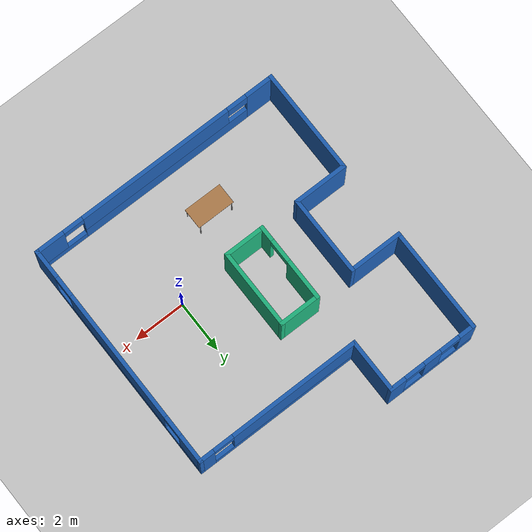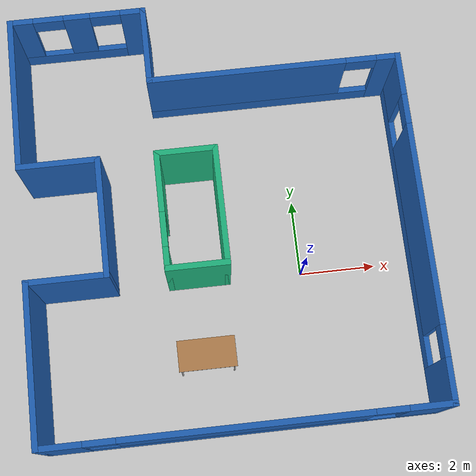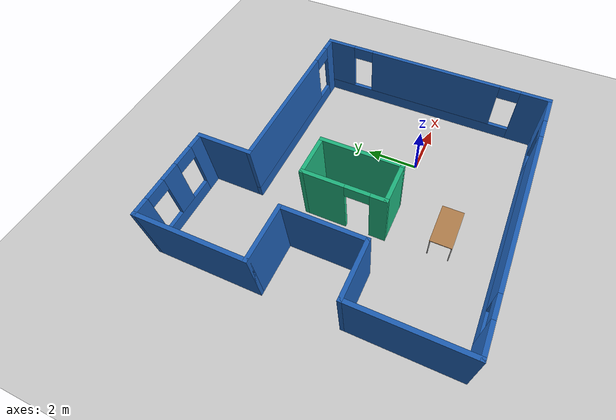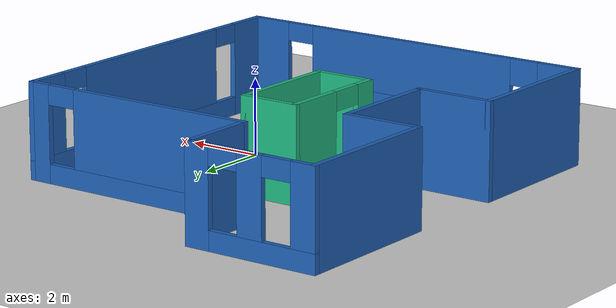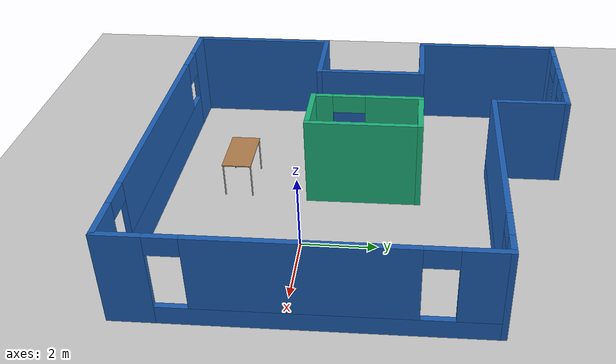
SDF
<sdf version="1.6">
 <world name="default">
  <model name="ground_plane">
   <static>1</static>
   <link name="link">
    <collision name="collision">
     <geometry><plane><normal>0 0 1</normal><size>100 100</size></plane></geometry>
     <surface><friction><ode><mu>100</mu><mu2>50</mu2></ode></friction></surface>
    </collision>
    <visual name="visual">
     <cast_shadows>0</cast_shadows>
     <geometry><plane><normal>0 0 1</normal><size>100 100</size></plane></geometry>
     <material>
      <script><uri>file://media/materials/scripts/gazebo.material</uri><name>Gazebo/Grey</name></script>
     </material>
    </visual>
   </link>
  </model>
  <model name="house">
   <pose>-2 1.5 0 0 -0 0</pose>
   <link name="Wall_10">
    <collision name="Wall_10_Collision">
     <geometry><box><size>2.14909 0.15 2.5</size></box></geometry>
     <pose>0 0 1.25 0 -0 0</pose>
    </collision>
    <visual name="Wall_10_Visual">
     <pose>0 0 1.25 0 -0 0</pose>
     <geometry><box><size>2.14909 0.15 2.5</size></box></geometry>
     <material>
      <script><uri>file://media/materials/scripts/gazebo.material</uri><name>Gazebo/Grey</name></script>
      <ambient>0.117647 0.376471 0.709804 1</ambient>
     </material>
     <meta><layer>0</layer></meta>
    </visual>
    <pose>-1.5 4.5 0 0 -0 1.5708</pose>
   </link>
   <link name="Wall_11">
    <pose>-3.25 5.5 0 0 -0 3.14159</pose>
    <visual name="Wall_11_Visual_0">
     <pose>-1.4875 0 1.25 0 -0 0</pose>
     <geometry><box><size>0.675 0.15 2.5</size></box></geometry>
     <material>
      <script><uri>file://media/materials/scripts/gazebo.material</uri><name>Gazebo/Grey</name></script>
      <ambient>0.117647 0.376471 0.709804 1</ambient>
     </material>
     <meta><layer>0</layer></meta>
    </visual>
    <collision name="Wall_11_Collision_0">
     <geometry><box><size>0.675 0.15 2.5</size></box></geometry>
     <pose>-1.4875 0 1.25 0 -0 0</pose>
    </collision>
    <visual name="Wall_11_Visual_1">
     <pose>0.3375 0 0.25 0 -0 0</pose>
     <geometry><box><size>2.975 0.15 0.5</size></box></geometry>
     <material>
      <script><uri>file://media/materials/scripts/gazebo.material</uri><name>Gazebo/Grey</name></script>
      <ambient>0.117647 0.376471 0.709804 1</ambient>
     </material>
     <meta><layer>0</layer></meta>
    </visual>
    <collision name="Wall_11_Collision_1">
     <geometry><box><size>2.975 0.15 0.5</size></box></geometry>
     <pose>0.3375 0 0.25 0 -0 0</pose>
    </collision>
    <visual name="Wall_11_Visual_2">
     <pose>0 0 1.5 0 -0 0</pose>
     <geometry><box><size>0.7 0.15 2</size></box></geometry>
     <material>
      <script><uri>file://media/materials/scripts/gazebo.material</uri><name>Gazebo/Grey</name></script>
      <ambient>0.117647 0.376471 0.709804 1</ambient>
     </material>
     <meta><layer>0</layer></meta>
    </visual>
    <collision name="Wall_11_Collision_2">
     <geometry><box><size>0.7 0.15 2</size></box></geometry>
     <pose>0 0 1.5 0 -0 0</pose>
    </collision>
    <visual name="Wall_11_Visual_3">
     <pose>1.4875 0 1.5 0 -0 0</pose>
     <geometry><box><size>0.675 0.15 2</size></box></geometry>
     <material>
      <script><uri>file://media/materials/scripts/gazebo.material</uri><name>Gazebo/Grey</name></script>
      <ambient>0.117647 0.376471 0.709804 1</ambient>
     </material>
     <meta><layer>0</layer></meta>
    </visual>
    <collision name="Wall_11_Collision_3">
     <geometry><box><size>0.675 0.15 2</size></box></geometry>
     <pose>1.4875 0 1.5 0 -0 0</pose>
    </collision>
    <visual name="Wall_11_Visual_4">
     <pose>-0.75 0 2.25 0 -0 0</pose>
     <geometry><box><size>0.8 0.15 0.5</size></box></geometry>
     <material>
      <script><uri>file://media/materials/scripts/gazebo.material</uri><name>Gazebo/Grey</name></script>
      <ambient>0.117647 0.376471 0.709804 1</ambient>
     </material>
     <meta><layer>0</layer></meta>
    </visual>
    <collision name="Wall_11_Collision_4">
     <geometry><box><size>0.8 0.15 0.5</size></box></geometry>
     <pose>-0.75 0 2.25 0 -0 0</pose>
    </collision>
    <visual name="Wall_11_Visual_5">
     <pose>0.75 0 2.25 0 -0 0</pose>
     <geometry><box><size>0.8 0.15 0.5</size></box></geometry>
     <material>
      <script><uri>file://media/materials/scripts/gazebo.material</uri><name>Gazebo/Grey</name></script>
      <ambient>0.117647 0.376471 0.709804 1</ambient>
     </material>
     <meta><layer>0</layer></meta>
    </visual>
    <collision name="Wall_11_Collision_5">
     <geometry><box><size>0.8 0.15 0.5</size></box></geometry>
     <pose>0.75 0 2.25 0 -0 0</pose>
    </collision>
   </link>
   <link name="Wall_13">
    <pose>-1.5 0 0 0 0 -1.5708</pose>
    <visual name="Wall_13_Visual_0">
     <pose>-0.7625 0 1.25 0 -0 0</pose>
     <geometry><box><size>1.625 0.15 2.5</size></box></geometry>
     <material>
      <script><uri>file://media/materials/scripts/gazebo.material</uri><name>Gazebo/Grey</name></script>
      <ambient>0.117647 0.709804 0.494118 1</ambient>
     </material>
     <meta><layer>0</layer></meta>
    </visual>
    <collision name="Wall_13_Collision_0">
     <geometry><box><size>1.625 0.15 2.5</size></box></geometry>
     <pose>-0.7625 0 1.25 0 -0 0</pose>
    </collision>
    <visual name="Wall_13_Visual_1">
     <pose>1.2625 0 1.25 0 -0 0</pose>
     <geometry><box><size>0.625 0.15 2.5</size></box></geometry>
     <material>
      <script><uri>file://media/materials/scripts/gazebo.material</uri><name>Gazebo/Grey</name></script>
      <ambient>0.117647 0.709804 0.494118 1</ambient>
     </material>
     <meta><layer>0</layer></meta>
    </visual>
    <collision name="Wall_13_Collision_1">
     <geometry><box><size>0.625 0.15 2.5</size></box></geometry>
     <pose>1.2625 0 1.25 0 -0 0</pose>
    </collision>
    <visual name="Wall_13_Visual_2">
     <pose>0.5 0 2.25 0 -0 0</pose>
     <geometry><box><size>0.9 0.15 0.5</size></box></geometry>
     <material>
      <script><uri>file://media/materials/scripts/gazebo.material</uri><name>Gazebo/Grey</name></script>
      <ambient>0.117647 0.709804 0.494118 1</ambient>
     </material>
     <meta><layer>0</layer></meta>
    </visual>
    <collision name="Wall_13_Collision_2">
     <geometry><box><size>0.9 0.15 0.5</size></box></geometry>
     <pose>0.5 0 2.25 0 -0 0</pose>
    </collision>
   </link>
   <link name="Wall_14">
    <collision name="Wall_14_Collision">
     <geometry><box><size>1.65 0.15 2.5</size></box></geometry>
     <pose>0 0 1.25 0 -0 0</pose>
    </collision>
    <visual name="Wall_14_Visual">
     <pose>0 0 1.25 0 -0 0</pose>
     <geometry><box><size>1.65 0.15 2.5</size></box></geometry>
     <material>
      <script><uri>file://media/materials/scripts/gazebo.material</uri><name>Gazebo/Grey</name></script>
      <ambient>0.117647 0.709804 0.494118 1</ambient>
     </material>
     <meta><layer>0</layer></meta>
    </visual>
    <pose>-0.75 -1.5 0 0 -0 0</pose>
   </link>
   <link name="Wall_15">
    <collision name="Wall_15_Collision">
     <geometry><box><size>3.15 0.15 2.5</size></box></geometry>
     <pose>0 0 1.25 0 -0 0</pose>
    </collision>
    <visual name="Wall_15_Visual">
     <pose>0 0 1.25 0 -0 0</pose>
     <geometry><box><size>3.15 0.15 2.5</size></box></geometry>
     <material>
      <script><uri>file://media/materials/scripts/gazebo.material</uri><name>Gazebo/Grey</name></script>
      <ambient>0.117647 0.709804 0.494118 1</ambient>
     </material>
     <meta><layer>0</layer></meta>
    </visual>
    <pose>0 0 0 0 -0 1.5708</pose>
   </link>
   <link name="Wall_16">
    <collision name="Wall_16_Collision">
     <geometry><box><size>1.65 0.15 2.5</size></box></geometry>
     <pose>0 0 1.25 0 -0 0</pose>
    </collision>
    <visual name="Wall_16_Visual">
     <pose>0 0 1.25 0 -0 0</pose>
     <geometry><box><size>1.65 0.15 2.5</size></box></geometry>
     <material>
      <script><uri>file://media/materials/scripts/gazebo.material</uri><name>Gazebo/Grey</name></script>
      <ambient>0.117647 0.709804 0.494118 1</ambient>
     </material>
     <meta><layer>0</layer></meta>
    </visual>
    <pose>-0.75 1.5 0 0 -0 3.14159</pose>
   </link>
   <link name="Wall_2">
    <collision name="Wall_2_Collision">
     <geometry><box><size>4.15 0.15 2.5</size></box></geometry>
     <pose>0 0 1.25 0 -0 0</pose>
    </collision>
    <visual name="Wall_2_Visual">
     <pose>0 0 1.25 0 -0 0</pose>
     <geometry><box><size>4.15 0.15 2.5</size></box></geometry>
     <material>
      <script><uri>file://media/materials/scripts/gazebo.material</uri><name>Gazebo/Grey</name></script>
      <ambient>0.117647 0.376471 0.709804 1</ambient>
     </material>
     <meta><layer>0</layer></meta>
    </visual>
    <pose>-5 3.5 0 0 0 -1.5708</pose>
   </link>
   <link name="Wall_3">
    <collision name="Wall_3_Collision">
     <geometry><box><size>2.15 0.15 2.5</size></box></geometry>
     <pose>0 0 1.25 0 -0 0</pose>
    </collision>
    <visual name="Wall_3_Visual">
     <pose>0 0 1.25 0 -0 0</pose>
     <geometry><box><size>2.15 0.15 2.5</size></box></geometry>
     <material>
      <script><uri>file://media/materials/scripts/gazebo.material</uri><name>Gazebo/Grey</name></script>
      <ambient>0.117647 0.376471 0.709804 1</ambient>
     </material>
     <meta><layer>0</layer></meta>
    </visual>
    <pose>-4 1.5 0 0 -0 0</pose>
   </link>
   <link name="Wall_4">
    <collision name="Wall_4_Collision">
     <geometry><box><size>3.15 0.15 2.5</size></box></geometry>
     <pose>0 0 1.25 0 -0 0</pose>
    </collision>
    <visual name="Wall_4_Visual">
     <pose>0 0 1.25 0 -0 0</pose>
     <geometry><box><size>3.15 0.15 2.5</size></box></geometry>
     <material>
      <script><uri>file://media/materials/scripts/gazebo.material</uri><name>Gazebo/Grey</name></script>
      <ambient>0.117647 0.376471 0.709804 1</ambient>
     </material>
     <meta><layer>0</layer></meta>
    </visual>
    <pose>-3 0 0 0 0 -1.5708</pose>
   </link>
   <link name="Wall_5">
    <collision name="Wall_5_Collision">
     <geometry><box><size>2.15 0.15 2.5</size></box></geometry>
     <pose>0 0 1.25 0 -0 0</pose>
    </collision>
    <visual name="Wall_5_Visual">
     <pose>0 0 1.25 0 -0 0</pose>
     <geometry><box><size>2.15 0.15 2.5</size></box></geometry>
     <material>
      <script><uri>file://media/materials/scripts/gazebo.material</uri><name>Gazebo/Grey</name></script>
      <ambient>0.117647 0.376471 0.709804 1</ambient>
     </material>
     <meta><layer>0</layer></meta>
    </visual>
    <pose>-4 -1.5 0 0 -0 3.14159</pose>
   </link>
   <link name="Wall_6">
    <collision name="Wall_6_Collision">
     <geometry><box><size>4.15 0.15 2.5</size></box></geometry>
     <pose>0 0 1.25 0 -0 0</pose>
    </collision>
    <visual name="Wall_6_Visual">
     <pose>0 0 1.25 0 -0 0</pose>
     <geometry><box><size>4.15 0.15 2.5</size></box></geometry>
     <material>
      <script><uri>file://media/materials/scripts/gazebo.material</uri><name>Gazebo/Grey</name></script>
      <ambient>0.117647 0.376471 0.709804 1</ambient>
     </material>
     <meta><layer>0</layer></meta>
    </visual>
    <pose>-5 -3.5 0 0 0 -1.5708</pose>
   </link>
   <link name="Wall_7">
    <pose>0 -5.5 0 0 -0 0</pose>
    <visual name="Wall_7_Visual_0">
     <pose>-4.4875 0 1.25 0 -0 0</pose>
     <geometry><box><size>1.175 0.15 2.5</size></box></geometry>
     <material>
      <script><uri>file://media/materials/scripts/gazebo.material</uri><name>Gazebo/Grey</name></script>
      <ambient>0.117647 0.376471 0.709804 1</ambient>
     </material>
     <meta><layer>0</layer></meta>
    </visual>
    <collision name="Wall_7_Collision_0">
     <geometry><box><size>1.175 0.15 2.5</size></box></geometry>
     <pose>-4.4875 0 1.25 0 -0 0</pose>
    </collision>
    <visual name="Wall_7_Visual_1">
     <pose>-0.4 0 0.5 0 -0 0</pose>
     <geometry><box><size>7 0.15 1</size></box></geometry>
     <material>
      <script><uri>file://media/materials/scripts/gazebo.material</uri><name>Gazebo/Grey</name></script>
      <ambient>0.117647 0.376471 0.709804 1</ambient>
     </material>
     <meta><layer>0</layer></meta>
    </visual>
    <collision name="Wall_7_Collision_1">
     <geometry><box><size>7 0.15 1</size></box></geometry>
     <pose>-0.4 0 0.5 0 -0 0</pose>
    </collision>
    <visual name="Wall_7_Visual_2">
     <pose>4.0875 0 0.25 0 -0 0</pose>
     <geometry><box><size>1.975 0.15 0.5</size></box></geometry>
     <material>
      <script><uri>file://media/materials/scripts/gazebo.material</uri><name>Gazebo/Grey</name></script>
      <ambient>0.117647 0.376471 0.709804 1</ambient>
     </material>
     <meta><layer>0</layer></meta>
    </visual>
    <collision name="Wall_7_Collision_2">
     <geometry><box><size>1.975 0.15 0.5</size></box></geometry>
     <pose>4.0875 0 0.25 0 -0 0</pose>
    </collision>
    <visual name="Wall_7_Visual_3">
     <pose>4.4875 0 1.5 0 -0 0</pose>
     <geometry><box><size>1.175 0.15 2</size></box></geometry>
     <material>
      <script><uri>file://media/materials/scripts/gazebo.material</uri><name>Gazebo/Grey</name></script>
      <ambient>0.117647 0.376471 0.709804 1</ambient>
     </material>
     <meta><layer>0</layer></meta>
    </visual>
    <collision name="Wall_7_Collision_3">
     <geometry><box><size>1.175 0.15 2</size></box></geometry>
     <pose>4.4875 0 1.5 0 -0 0</pose>
    </collision>
    <visual name="Wall_7_Visual_4">
     <pose>-0 0 1.75 0 -0 0</pose>
     <geometry><box><size>6.2 0.15 1.5</size></box></geometry>
     <material>
      <script><uri>file://media/materials/scripts/gazebo.material</uri><name>Gazebo/Grey</name></script>
      <ambient>0.117647 0.376471 0.709804 1</ambient>
     </material>
     <meta><layer>0</layer></meta>
    </visual>
    <collision name="Wall_7_Collision_4">
     <geometry><box><size>6.2 0.15 1.5</size></box></geometry>
     <pose>-0 0 1.75 0 -0 0</pose>
    </collision>
    <visual name="Wall_7_Visual_5">
     <pose>-3.5 0 2.15 0 -0 0</pose>
     <geometry><box><size>0.8 0.15 0.7</size></box></geometry>
     <material>
      <script><uri>file://media/materials/scripts/gazebo.material</uri><name>Gazebo/Grey</name></script>
      <ambient>0.117647 0.376471 0.709804 1</ambient>
     </material>
     <meta><layer>0</layer></meta>
    </visual>
    <collision name="Wall_7_Collision_5">
     <geometry><box><size>0.8 0.15 0.7</size></box></geometry>
     <pose>-3.5 0 2.15 0 -0 0</pose>
    </collision>
    <visual name="Wall_7_Visual_6">
     <pose>3.5 0 2.25 0 -0 0</pose>
     <geometry><box><size>0.8 0.15 0.5</size></box></geometry>
     <material>
      <script><uri>file://media/materials/scripts/gazebo.material</uri><name>Gazebo/Grey</name></script>
      <ambient>0.117647 0.376471 0.709804 1</ambient>
     </material>
     <meta><layer>0</layer></meta>
    </visual>
    <collision name="Wall_7_Collision_6">
     <geometry><box><size>0.8 0.15 0.5</size></box></geometry>
     <pose>3.5 0 2.25 0 -0 0</pose>
    </collision>
   </link>
   <link name="Wall_8">
    <pose>5 -1 0 0 -0 1.5708</pose>
    <visual name="Wall_8_Visual_0">
     <pose>-3.9875 0 1.25 0 -0 0</pose>
     <geometry><box><size>1.175 0.15 2.5</size></box></geometry>
     <material>
      <script><uri>file://media/materials/scripts/gazebo.material</uri><name>Gazebo/Grey</name></script>
      <ambient>0.117647 0.376471 0.709804 1</ambient>
     </material>
     <meta><layer>0</layer></meta>
    </visual>
    <collision name="Wall_8_Collision_0">
     <geometry><box><size>1.175 0.15 2.5</size></box></geometry>
     <pose>-3.9875 0 1.25 0 -0 0</pose>
    </collision>
    <visual name="Wall_8_Visual_1">
     <pose>0.5875 0 0.25 0 -0 0</pose>
     <geometry><box><size>7.975 0.15 0.5</size></box></geometry>
     <material>
      <script><uri>file://media/materials/scripts/gazebo.material</uri><name>Gazebo/Grey</name></script>
      <ambient>0.117647 0.376471 0.709804 1</ambient>
     </material>
     <meta><layer>0</layer></meta>
    </visual>
    <collision name="Wall_8_Collision_1">
     <geometry><box><size>7.975 0.15 0.5</size></box></geometry>
     <pose>0.5875 0 0.25 0 -0 0</pose>
    </collision>
    <visual name="Wall_8_Visual_2">
     <pose>0.004987 0 1.5 0 -0 0</pose>
     <geometry><box><size>5.20997 0.15 2</size></box></geometry>
     <material>
      <script><uri>file://media/materials/scripts/gazebo.material</uri><name>Gazebo/Grey</name></script>
      <ambient>0.117647 0.376471 0.709804 1</ambient>
     </material>
     <meta><layer>0</layer></meta>
    </visual>
    <collision name="Wall_8_Collision_2">
     <geometry><box><size>5.20997 0.15 2</size></box></geometry>
     <pose>0.004987 0 1.5 0 -0 0</pose>
    </collision>
    <visual name="Wall_8_Visual_3">
     <pose>3.99249 0 1.5 0 -0 0</pose>
     <geometry><box><size>1.16503 0.15 2</size></box></geometry>
     <material>
      <script><uri>file://media/materials/scripts/gazebo.material</uri><name>Gazebo/Grey</name></script>
      <ambient>0.117647 0.376471 0.709804 1</ambient>
     </material>
     <meta><layer>0</layer></meta>
    </visual>
    <collision name="Wall_8_Collision_3">
     <geometry><box><size>1.16503 0.15 2</size></box></geometry>
     <pose>3.99249 0 1.5 0 -0 0</pose>
    </collision>
    <visual name="Wall_8_Visual_4">
     <pose>-3 0 2.25 0 -0 0</pose>
     <geometry><box><size>0.8 0.15 0.5</size></box></geometry>
     <material>
      <script><uri>file://media/materials/scripts/gazebo.material</uri><name>Gazebo/Grey</name></script>
      <ambient>0.117647 0.376471 0.709804 1</ambient>
     </material>
     <meta><layer>0</layer></meta>
    </visual>
    <collision name="Wall_8_Collision_4">
     <geometry><box><size>0.8 0.15 0.5</size></box></geometry>
     <pose>-3 0 2.25 0 -0 0</pose>
    </collision>
    <visual name="Wall_8_Visual_5">
     <pose>3.00997 0 2.25 0 -0 0</pose>
     <geometry><box><size>0.8 0.15 0.5</size></box></geometry>
     <material>
      <script><uri>file://media/materials/scripts/gazebo.material</uri><name>Gazebo/Grey</name></script>
      <ambient>0.117647 0.376471 0.709804 1</ambient>
     </material>
     <meta><layer>0</layer></meta>
    </visual>
    <collision name="Wall_8_Collision_5">
     <geometry><box><size>0.8 0.15 0.5</size></box></geometry>
     <pose>3.00997 0 2.25 0 -0 0</pose>
    </collision>
   </link>
   <link name="Wall_9">
    <pose>1.75 3.5 0 0 -0 3.14159</pose>
    <visual name="Wall_9_Visual_0">
     <pose>-3.00663 0 1.25 0 -0 0</pose>
     <geometry><box><size>0.636747 0.15 2.5</size></box></geometry>
     <material>
      <script><uri>file://media/materials/scripts/gazebo.material</uri><name>Gazebo/Grey</name></script>
      <ambient>0.117647 0.376471 0.709804 1</ambient>
     </material>
     <meta><layer>0</layer></meta>
    </visual>
    <collision name="Wall_9_Collision_0">
     <geometry><box><size>0.636747 0.15 2.5</size></box></geometry>
     <pose>-3.00663 0 1.25 0 -0 0</pose>
    </collision>
    <visual name="Wall_9_Visual_1">
     <pose>0.318374 0 0.25 0 -0 0</pose>
     <geometry><box><size>6.01325 0.15 0.5</size></box></geometry>
     <material>
      <script><uri>file://media/materials/scripts/gazebo.material</uri><name>Gazebo/Grey</name></script>
      <ambient>0.117647 0.376471 0.709804 1</ambient>
     </material>
     <meta><layer>0</layer></meta>
    </visual>
    <collision name="Wall_9_Collision_1">
     <geometry><box><size>6.01325 0.15 0.5</size></box></geometry>
     <pose>0.318374 0 0.25 0 -0 0</pose>
    </collision>
    <visual name="Wall_9_Visual_2">
     <pose>0.718374 0 1.5 0 -0 0</pose>
     <geometry><box><size>5.21325 0.15 2</size></box></geometry>
     <material>
      <script><uri>file://media/materials/scripts/gazebo.material</uri><name>Gazebo/Grey</name></script>
      <ambient>0.117647 0.376471 0.709804 1</ambient>
     </material>
     <meta><layer>0</layer></meta>
    </visual>
    <collision name="Wall_9_Collision_2">
     <geometry><box><size>5.21325 0.15 2</size></box></geometry>
     <pose>0.718374 0 1.5 0 -0 0</pose>
    </collision>
    <visual name="Wall_9_Visual_3">
     <pose>-2.28825 0 2.25 0 -0 0</pose>
     <geometry><box><size>0.8 0.15 0.5</size></box></geometry>
     <material>
      <script><uri>file://media/materials/scripts/gazebo.material</uri><name>Gazebo/Grey</name></script>
      <ambient>0.117647 0.376471 0.709804 1</ambient>
     </material>
     <meta><layer>0</layer></meta>
    </visual>
    <collision name="Wall_9_Collision_3">
     <geometry><box><size>0.8 0.15 0.5</size></box></geometry>
     <pose>-2.28825 0 2.25 0 -0 0</pose>
    </collision>
   </link>
   <static>1</static>
  </model>
  <model name="table">
   <static>1</static>
   <link name="link">
    <collision name="surface">
     <pose>0 0 1 0 -0 0</pose>
     <geometry><box><size>1.5 0.8 0.03</size></box></geometry>
     <surface><friction><ode><mu>0.6</mu><mu2>0.6</mu2></ode></friction></surface>
    </collision>
    <visual name="visual1">
     <pose>0 0 1 0 -0 0</pose>
     <geometry><box><size>1.5 0.8 0.03</size></box></geometry>
     <material>
      <script><uri>file://media/materials/scripts/gazebo.material</uri><name>Gazebo/Wood</name></script>
     </material>
    </visual>
    <collision name="front_left_leg">
     <pose>0.68 0.38 0.5 0 -0 0</pose>
     <geometry><cylinder><radius>0.02</radius><length>1</length></cylinder></geometry>
    </collision>
    <visual name="front_left_leg">
     <pose>0.68 0.38 0.5 0 -0 0</pose>
     <geometry><cylinder><radius>0.02</radius><length>1</length></cylinder></geometry>
     <material>
      <script><uri>file://media/materials/scripts/gazebo.material</uri><name>Gazebo/Grey</name></script>
     </material>
    </visual>
    <collision name="front_right_leg">
     <pose>0.68 -0.38 0.5 0 -0 0</pose>
     <geometry><cylinder><radius>0.02</radius><length>1</length></cylinder></geometry>
    </collision>
    <visual name="front_right_leg">
     <pose>0.68 -0.38 0.5 0 -0 0</pose>
     <geometry><cylinder><radius>0.02</radius><length>1</length></cylinder></geometry>
     <material>
      <script><uri>file://media/materials/scripts/gazebo.material</uri><name>Gazebo/Grey</name></script>
     </material>
    </visual>
    <collision name="back_right_leg">
     <pose>-0.68 -0.38 0.5 0 -0 0</pose>
     <geometry><cylinder><radius>0.02</radius><length>1</length></cylinder></geometry>
    </collision>
    <visual name="back_right_leg">
     <pose>-0.68 -0.38 0.5 0 -0 0</pose>
     <geometry><cylinder><radius>0.02</radius><length>1</length></cylinder></geometry>
     <material>
      <script><uri>file://media/materials/scripts/gazebo.material</uri><name>Gazebo/Grey</name></script>
     </material>
    </visual>
    <collision name="back_left_leg">
     <pose>-0.68 0.38 0.5 0 -0 0</pose>
     <geometry><cylinder><radius>0.02</radius><length>1</length></cylinder></geometry>
    </collision>
    <visual name="back_left_leg">
     <pose>-0.68 0.38 0.5 0 -0 0</pose>
     <geometry><cylinder><radius>0.02</radius><length>1</length></cylinder></geometry>
     <material>
      <script><uri>file://media/materials/scripts/gazebo.material</uri><name>Gazebo/Grey</name></script>
     </material>
    </visual>
   </link>
   <pose>-2.75 -2 0 0 -0 0</pose>
  </model>
 </world>
</sdf>
